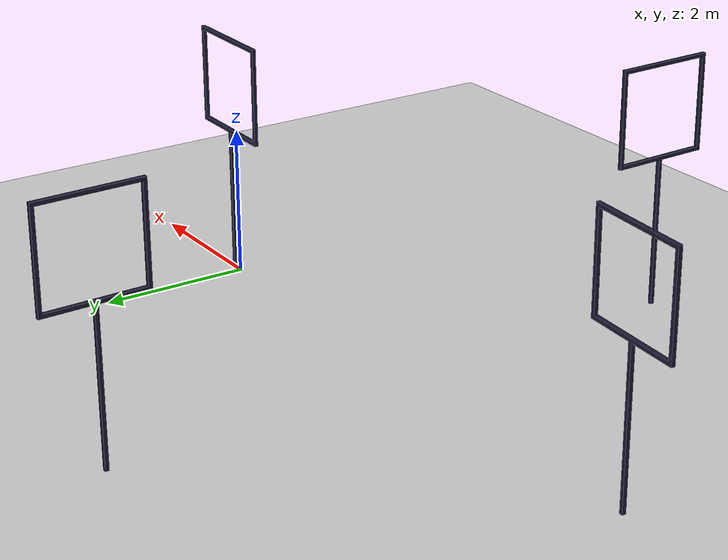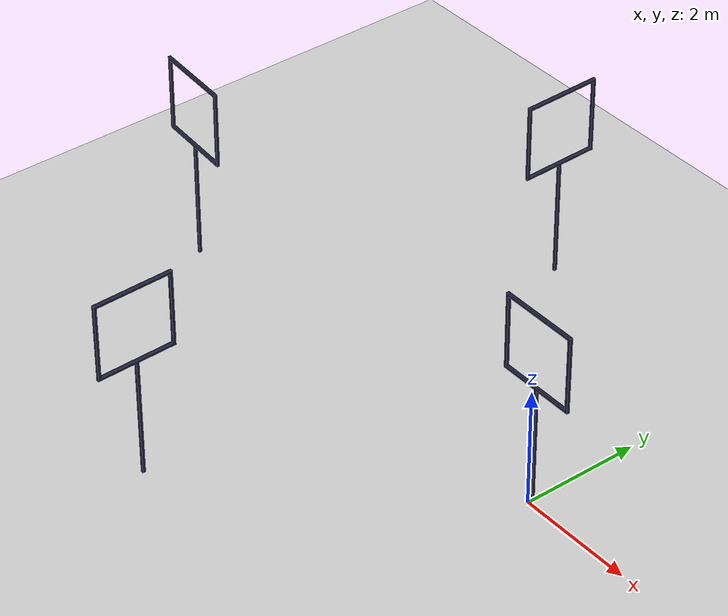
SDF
<sdf version="1.6">
 <world name="default">
  <light name="sun" type="directional">
   <pose>0 0 10 0 -0 0</pose>
   <diffuse>0.8 0.8 0.8 1</diffuse>
   <specular>0.2 0.2 0.2 1</specular>
   <attenuation>
    <range>1000</range>
    <constant>0.9</constant>
    <linear>0.01</linear>
    <quadratic>0.001</quadratic>
   </attenuation>
   <direction>-0.5 0.1 -0.9</direction>
  </light>
  <model name="ground_plane">
   <static>1</static>
   <link name="link">
    <collision name="collision">
     <geometry><plane><normal>0 0 1</normal><size>100 100</size></plane></geometry>
     <surface>
      <contact><collide_bitmask>65535</collide_bitmask></contact>
      <friction><ode><mu>100</mu><mu2>50</mu2></ode></friction>
     </surface>
    </collision>
    <visual name="visual">
     <cast_shadows>0</cast_shadows>
     <geometry><plane><normal>0 0 1</normal><size>100 100</size></plane></geometry>
     <material>
      <script><uri>file://media/materials/scripts/gazebo.material</uri><name>Gazebo/Grey</name></script>
     </material>
    </visual>
   </link>
  </model>
  <gravity>0 0 -9.8</gravity>
  <magnetic_field>6e-06 2.3e-05 -4.2e-05</magnetic_field>
  <atmosphere type="adiabatic"/>
  <physics name="default_physics" default="0" type="ode">
   <max_step_size>0.001</max_step_size>
   <real_time_factor>1</real_time_factor>
   <real_time_update_rate>1000</real_time_update_rate>
  </physics>
  <scene><ambient>0.4 0.4 0.4 1</ambient><background>0.7 0.7 0.7 1</background><shadows>1</shadows></scene>
  <spherical_coordinates>
   <surface_model>EARTH_WGS84</surface_model>
   <latitude_deg>0</latitude_deg>
   <longitude_deg>0</longitude_deg>
   <elevation>0</elevation>
   <heading_deg>0</heading_deg>
  </spherical_coordinates>
  <model name="iROS2016 Track">
   <link name="gate_05">
    <pose>13 -6 0 0 -0 -1.28319</pose>
    <visual name="visual">
     <geometry><mesh><uri>model://iros2016_track/gates/05.dae</uri></mesh></geometry>
     <material>
      <ambient>0 0 1 1</ambient>
      <diffuse>0.1 0.1 0.2 1</diffuse>
      <specular>0 0 0 0</specular>
      <emissive>0 0 0 1</emissive>
     </material>
    </visual>
   </link>
   <static>1</static>
   <pose>-14.9385 5.32054 0 0 0 -0.266669</pose>
  </model>
  <model name="iROS2016 Track_0">
   <link name="gate_05">
    <pose>13 -6 0 0 -0 -1.28319</pose>
    <visual name="visual">
     <geometry><mesh><uri>model://iros2016_track/gates/05.dae</uri></mesh></geometry>
     <material>
      <ambient>0 0 1 1</ambient>
      <diffuse>0.1 0.1 0.2 1</diffuse>
      <specular>0 0 0 0</specular>
      <emissive>0 0 0 1</emissive>
     </material>
    </visual>
   </link>
   <static>1</static>
   <pose>-18.0863 -10.1066 0 0 -0 1.20966</pose>
  </model>
  <model name="iROS2016 Track_1">
   <link name="gate_05">
    <pose>13 -6 0 0 -0 -1.28319</pose>
    <visual name="visual">
     <geometry><mesh><uri>model://iros2016_track/gates/05.dae</uri></mesh></geometry>
     <material>
      <ambient>0 0 1 1</ambient>
      <diffuse>0.1 0.1 0.2 1</diffuse>
      <specular>0 0 0 0</specular>
      <emissive>0 0 0 1</emissive>
     </material>
    </visual>
   </link>
   <static>1</static>
   <pose>-14.9641 13.211 0 0 0 -0.265684</pose>
  </model>
  <model name="iROS2016 Track_2">
   <link name="gate_05">
    <pose>13 -6 0 0 -0 -1.28319</pose>
    <visual name="visual">
     <geometry><mesh><uri>model://iros2016_track/gates/05.dae</uri></mesh></geometry>
     <material>
      <ambient>0 0 1 1</ambient>
      <diffuse>0.1 0.1 0.2 1</diffuse>
      <specular>0 0 0 0</specular>
      <emissive>0 0 0 1</emissive>
     </material>
    </visual>
   </link>
   <static>1</static>
   <pose>-9.58784 -10.5547 0 0 -0 1.27042</pose>
  </model>
 </world>
</sdf>
